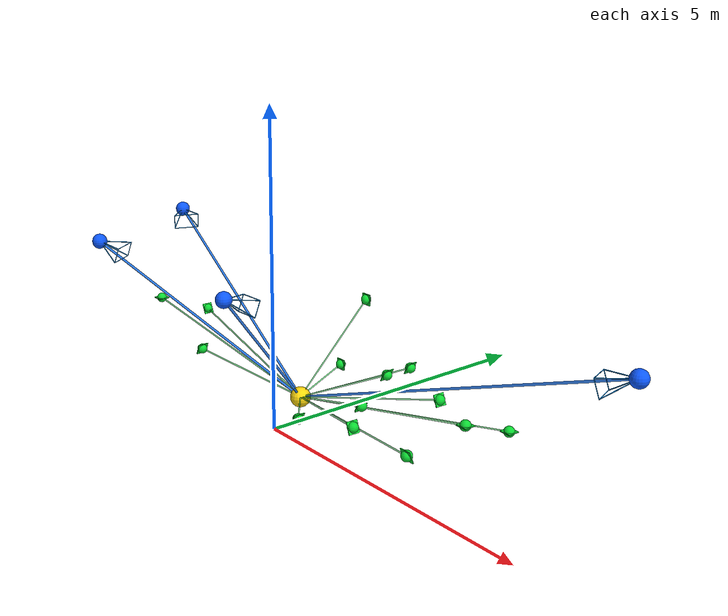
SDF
<?xml version="1.0"?>
<sdf version="1.7">
  <model name="ap02_graph_clean_overlay">
    <static>true</static>
    <link name="ap02_graph_overlay_link">

      <visual name="NODE_REF_ARUCO_14_ORIGIN">
        <pose>0.000000 0.500000 0.400000 0 0 0</pose>
        <geometry><sphere><radius>0.1600</radius></sphere></geometry>

          <material>
            <ambient>1.000 0.850 0.050 1.000</ambient>
            <diffuse>1.000 0.850 0.050 1.000</diffuse>
          </material>
      </visual>
      <visual name="REF_ARUCO_14_PLANE">
        <pose>0.000000 0.500000 0.400000 -0.000000 -0.000000 0.000000</pose>
        <geometry><box><size>0.2000 0.2000 0.0180</size></box></geometry>

          <material>
            <ambient>1.000 0.850 0.050 1.000</ambient>
            <diffuse>1.000 0.850 0.050 1.000</diffuse>
          </material>
      </visual>
      <visual name="NODE_EST_CAMERA_cam_edge_0_dist_2.84m">
        <pose>0.636423 -1.271006 2.528467 0 0 0</pose>
        <geometry><sphere><radius>0.1200</radius></sphere></geometry>

          <material>
            <ambient>0.050 0.350 1.000 1.000</ambient>
            <diffuse>0.050 0.350 1.000 1.000</diffuse>
          </material>
      </visual>
      <visual name="CAMERA_cam_edge_0_frustum_ray_0">
        <pose>0.534993 -1.039664 2.496244 1.697678 -0.000000 -2.728393</pose>
        <geometry>
          <cylinder>
            <radius>0.00600</radius>
            <length>0.509296</length>
          </cylinder>
        </geometry>

          <material>
            <ambient>0.050 0.600 1.000 0.900</ambient>
            <diffuse>0.050 0.600 1.000 0.900</diffuse>
          </material>
      </visual>
      <visual name="CAMERA_cam_edge_0_frustum_ray_1">
        <pose>0.737383 -1.038636 2.502841 1.671603 -0.000000 2.731720</pose>
        <geometry>
          <cylinder>
            <radius>0.00600</radius>
            <length>0.509296</length>
          </cylinder>
        </geometry>

          <material>
            <ambient>0.050 0.600 1.000 0.900</ambient>
            <diffuse>0.050 0.600 1.000 0.900</diffuse>
          </material>
      </visual>
      <visual name="CAMERA_cam_edge_0_frustum_ray_2">
        <pose>0.741416 -1.087356 2.386711 2.161175 -0.000000 2.622241</pose>
        <geometry>
          <cylinder>
            <radius>0.00600</radius>
            <length>0.509296</length>
          </cylinder>
        </geometry>

          <material>
            <ambient>0.050 0.600 1.000 0.900</ambient>
            <diffuse>0.050 0.600 1.000 0.900</diffuse>
          </material>
      </visual>
      <visual name="CAMERA_cam_edge_0_frustum_ray_3">
        <pose>0.539026 -1.088384 2.380114 2.192697 -0.000000 -2.651640</pose>
        <geometry>
          <cylinder>
            <radius>0.00600</radius>
            <length>0.509296</length>
          </cylinder>
        </geometry>

          <material>
            <ambient>0.050 0.600 1.000 0.900</ambient>
            <diffuse>0.050 0.600 1.000 0.900</diffuse>
          </material>
      </visual>
      <visual name="CAMERA_cam_edge_0_frustum_rect_0">
        <pose>0.635954 -0.807294 2.470617 1.538214 -0.000000 1.575875</pose>
        <geometry>
          <cylinder>
            <radius>0.00500</radius>
            <length>0.405000</length>
          </cylinder>
        </geometry>

          <material>
            <ambient>0.050 0.600 1.000 0.900</ambient>
            <diffuse>0.050 0.600 1.000 0.900</diffuse>
          </material>
      </visual>
      <visual name="CAMERA_cam_edge_0_frustum_rect_1">
        <pose>0.842376 -0.854986 2.361084 2.743141 0.000000 0.082583</pose>
        <geometry>
          <cylinder>
            <radius>0.00500</radius>
            <length>0.252000</length>
          </cylinder>
        </geometry>

          <material>
            <ambient>0.050 0.600 1.000 0.900</ambient>
            <diffuse>0.050 0.600 1.000 0.900</diffuse>
          </material>
      </visual>
      <visual name="CAMERA_cam_edge_0_frustum_rect_2">
        <pose>0.644019 -0.904734 2.238358 1.603379 -0.000000 -1.565717</pose>
        <geometry>
          <cylinder>
            <radius>0.00500</radius>
            <length>0.405000</length>
          </cylinder>
        </geometry>

          <material>
            <ambient>0.050 0.600 1.000 0.900</ambient>
            <diffuse>0.050 0.600 1.000 0.900</diffuse>
          </material>
      </visual>
      <visual name="CAMERA_cam_edge_0_frustum_rect_3">
        <pose>0.437596 -0.857042 2.347891 0.398452 -0.000000 -3.059010</pose>
        <geometry>
          <cylinder>
            <radius>0.00500</radius>
            <length>0.252000</length>
          </cylinder>
        </geometry>

          <material>
            <ambient>0.050 0.600 1.000 0.900</ambient>
            <diffuse>0.050 0.600 1.000 0.900</diffuse>
          </material>
      </visual>
      <visual name="EDGE_REF14_TO_CAMERA_cam_edge_0_2.84m">
        <pose>0.318212 -0.385503 1.464234 0.723989 0.000000 0.344986</pose>
        <geometry>
          <cylinder>
            <radius>0.01800</radius>
            <length>2.841104</length>
          </cylinder>
        </geometry>

          <material>
            <ambient>0.050 0.450 1.000 0.850</ambient>
            <diffuse>0.050 0.450 1.000 0.850</diffuse>
          </material>
      </visual>
      <visual name="NODE_EST_CAMERA_cam_edge_1_dist_4.62m">
        <pose>-4.082467 0.971435 2.513292 0 0 0</pose>
        <geometry><sphere><radius>0.1200</radius></sphere></geometry>

          <material>
            <ambient>0.050 0.350 1.000 1.000</ambient>
            <diffuse>0.050 0.350 1.000 1.000</diffuse>
          </material>
      </visual>
      <visual name="CAMERA_cam_edge_1_frustum_ray_0">
        <pose>-3.827847 0.967963 2.514789 1.564919 0.000000 1.557163</pose>
        <geometry>
          <cylinder>
            <radius>0.00600</radius>
            <length>0.509296</length>
          </cylinder>
        </geometry>

          <material>
            <ambient>0.050 0.600 1.000 0.900</ambient>
            <diffuse>0.050 0.600 1.000 0.900</diffuse>
          </material>
      </visual>
      <visual name="CAMERA_cam_edge_1_frustum_ray_1">
        <pose>-3.910875 0.783284 2.512300 1.574691 0.000000 0.739402</pose>
        <geometry>
          <cylinder>
            <radius>0.00600</radius>
            <length>0.509296</length>
          </cylinder>
        </geometry>

          <material>
            <ambient>0.050 0.600 1.000 0.900</ambient>
            <diffuse>0.050 0.600 1.000 0.900</diffuse>
          </material>
      </visual>
      <visual name="CAMERA_cam_edge_1_frustum_ray_2">
        <pose>-3.941130 0.798521 2.390939 2.071996 0.000000 0.685253</pose>
        <geometry>
          <cylinder>
            <radius>0.00600</radius>
            <length>0.509296</length>
          </cylinder>
        </geometry>

          <material>
            <ambient>0.050 0.600 1.000 0.900</ambient>
            <diffuse>0.050 0.600 1.000 0.900</diffuse>
          </material>
      </visual>
      <visual name="CAMERA_cam_edge_1_frustum_ray_3">
        <pose>-3.858102 0.983200 2.393428 2.060887 -0.000000 1.623188</pose>
        <geometry>
          <cylinder>
            <radius>0.00600</radius>
            <length>0.509296</length>
          </cylinder>
        </geometry>

          <material>
            <ambient>0.050 0.600 1.000 0.900</ambient>
            <diffuse>0.050 0.600 1.000 0.900</diffuse>
          </material>
      </visual>
      <visual name="CAMERA_cam_edge_1_frustum_rect_0">
        <pose>-3.656255 0.779812 2.513797 1.583085 -0.000000 -0.422503</pose>
        <geometry>
          <cylinder>
            <radius>0.00500</radius>
            <length>0.405000</length>
          </cylinder>
        </geometry>

          <material>
            <ambient>0.050 0.600 1.000 0.900</ambient>
            <diffuse>0.050 0.600 1.000 0.900</diffuse>
          </material>
      </visual>
      <visual name="CAMERA_cam_edge_1_frustum_rect_1">
        <pose>-3.769538 0.610370 2.389948 -2.899106 -0.124899 1.570796</pose>
        <geometry>
          <cylinder>
            <radius>0.00500</radius>
            <length>0.252000</length>
          </cylinder>
        </geometry>

          <material>
            <ambient>0.050 0.600 1.000 0.900</ambient>
            <diffuse>0.050 0.600 1.000 0.900</diffuse>
          </material>
      </visual>
      <visual name="CAMERA_cam_edge_1_frustum_rect_2">
        <pose>-3.716765 0.810287 2.271075 1.558507 -0.000000 2.719090</pose>
        <geometry>
          <cylinder>
            <radius>0.00500</radius>
            <length>0.405000</length>
          </cylinder>
        </geometry>

          <material>
            <ambient>0.050 0.600 1.000 0.900</ambient>
            <diffuse>0.050 0.600 1.000 0.900</diffuse>
          </material>
      </visual>
      <visual name="CAMERA_cam_edge_1_frustum_rect_3">
        <pose>-3.603482 0.979729 2.394925 -0.242486 0.124899 -1.570796</pose>
        <geometry>
          <cylinder>
            <radius>0.00500</radius>
            <length>0.252000</length>
          </cylinder>
        </geometry>

          <material>
            <ambient>0.050 0.600 1.000 0.900</ambient>
            <diffuse>0.050 0.600 1.000 0.900</diffuse>
          </material>
      </visual>
      <visual name="EDGE_REF14_TO_CAMERA_cam_edge_1_4.62m">
        <pose>-2.041234 0.735717 1.456646 1.095827 -0.000000 -1.685765</pose>
        <geometry>
          <cylinder>
            <radius>0.01800</radius>
            <length>4.621125</length>
          </cylinder>
        </geometry>

          <material>
            <ambient>0.050 0.450 1.000 0.850</ambient>
            <diffuse>0.050 0.450 1.000 0.850</diffuse>
          </material>
      </visual>
      <visual name="NODE_EST_CAMERA_cam_edge_3_dist_4.20m">
        <pose>-3.302164 -1.085678 2.448533 0 0 0</pose>
        <geometry><sphere><radius>0.1200</radius></sphere></geometry>

          <material>
            <ambient>0.050 0.350 1.000 1.000</ambient>
            <diffuse>0.050 0.350 1.000 1.000</diffuse>
          </material>
      </visual>
      <visual name="CAMERA_cam_edge_3_frustum_ray_0">
        <pose>-3.151890 -0.880405 2.437292 1.614952 -0.000000 2.509666</pose>
        <geometry>
          <cylinder>
            <radius>0.00600</radius>
            <length>0.509296</length>
          </cylinder>
        </geometry>

          <material>
            <ambient>0.050 0.600 1.000 0.900</ambient>
            <diffuse>0.050 0.600 1.000 0.900</diffuse>
          </material>
      </visual>
      <visual name="CAMERA_cam_edge_3_frustum_ray_1">
        <pose>-3.049820 -1.055246 2.432984 1.631896 -0.000000 1.690813</pose>
        <geometry>
          <cylinder>
            <radius>0.00600</radius>
            <length>0.509296</length>
          </cylinder>
        </geometry>

          <material>
            <ambient>0.050 0.600 1.000 0.900</ambient>
            <diffuse>0.050 0.600 1.000 0.900</diffuse>
          </material>
      </visual>
      <visual name="CAMERA_cam_edge_3_frustum_ray_2">
        <pose>-3.086398 -1.073664 2.313825 2.128215 -0.000000 1.626421</pose>
        <geometry>
          <cylinder>
            <radius>0.00600</radius>
            <length>0.509296</length>
          </cylinder>
        </geometry>

          <material>
            <ambient>0.050 0.600 1.000 0.900</ambient>
            <diffuse>0.050 0.600 1.000 0.900</diffuse>
          </material>
      </visual>
      <visual name="CAMERA_cam_edge_3_frustum_ray_3">
        <pose>-3.188469 -0.898823 2.318134 2.108398 -0.000000 2.594969</pose>
        <geometry>
          <cylinder>
            <radius>0.00600</radius>
            <length>0.509296</length>
          </cylinder>
        </geometry>

          <material>
            <ambient>0.050 0.600 1.000 0.900</ambient>
            <diffuse>0.050 0.600 1.000 0.900</diffuse>
          </material>
      </visual>
      <visual name="CAMERA_cam_edge_3_frustum_rect_0">
        <pose>-2.899546 -0.849974 2.421743 1.592075 0.000000 0.528415</pose>
        <geometry>
          <cylinder>
            <radius>0.00500</radius>
            <length>0.405000</length>
          </cylinder>
        </geometry>

          <material>
            <ambient>0.050 0.600 1.000 0.900</ambient>
            <diffuse>0.050 0.600 1.000 0.900</diffuse>
          </material>
      </visual>
      <visual name="CAMERA_cam_edge_3_frustum_rect_1">
        <pose>-2.834054 -1.043232 2.298276 2.810552 -0.000000 -1.104344</pose>
        <geometry>
          <cylinder>
            <radius>0.00500</radius>
            <length>0.252000</length>
          </cylinder>
        </geometry>

          <material>
            <ambient>0.050 0.600 1.000 0.900</ambient>
            <diffuse>0.050 0.600 1.000 0.900</diffuse>
          </material>
      </visual>
      <visual name="CAMERA_cam_edge_3_frustum_rect_2">
        <pose>-2.972703 -0.886809 2.183426 1.549517 -0.000000 -2.613178</pose>
        <geometry>
          <cylinder>
            <radius>0.00500</radius>
            <length>0.405000</length>
          </cylinder>
        </geometry>

          <material>
            <ambient>0.050 0.600 1.000 0.900</ambient>
            <diffuse>0.050 0.600 1.000 0.900</diffuse>
          </material>
      </visual>
      <visual name="CAMERA_cam_edge_3_frustum_rect_3">
        <pose>-3.038195 -0.693550 2.306893 0.331041 -0.000000 2.037249</pose>
        <geometry>
          <cylinder>
            <radius>0.00500</radius>
            <length>0.252000</length>
          </cylinder>
        </geometry>

          <material>
            <ambient>0.050 0.600 1.000 0.900</ambient>
            <diffuse>0.050 0.600 1.000 0.900</diffuse>
          </material>
      </visual>
      <visual name="EDGE_REF14_TO_CAMERA_cam_edge_3_4.20m">
        <pose>-1.651082 -0.292839 1.424267 1.060896 -0.000000 -1.123119</pose>
        <geometry>
          <cylinder>
            <radius>0.01800</radius>
            <length>4.197041</length>
          </cylinder>
        </geometry>

          <material>
            <ambient>0.050 0.450 1.000 0.850</ambient>
            <diffuse>0.050 0.450 1.000 0.850</diffuse>
          </material>
      </visual>
      <visual name="NODE_EST_CAMERA_cam_edge_5_dist_6.39m">
        <pose>5.999649 0.815786 2.581473 0 0 0</pose>
        <geometry><sphere><radius>0.1200</radius></sphere></geometry>

          <material>
            <ambient>0.050 0.350 1.000 1.000</ambient>
            <diffuse>0.050 0.350 1.000 1.000</diffuse>
          </material>
      </visual>
      <visual name="CAMERA_cam_edge_5_frustum_ray_0">
        <pose>5.824921 0.630680 2.574302 1.598963 -0.000000 -0.756564</pose>
        <geometry>
          <cylinder>
            <radius>0.00600</radius>
            <length>0.509296</length>
          </cylinder>
        </geometry>

          <material>
            <ambient>0.050 0.600 1.000 0.900</ambient>
            <diffuse>0.050 0.600 1.000 0.900</diffuse>
          </material>
      </visual>
      <visual name="CAMERA_cam_edge_5_frustum_ray_1">
        <pose>5.746156 0.816454 2.557257 1.666038 -0.000000 -1.573428</pose>
        <geometry>
          <cylinder>
            <radius>0.00600</radius>
            <length>0.509296</length>
          </cylinder>
        </geometry>

          <material>
            <ambient>0.050 0.600 1.000 0.900</ambient>
            <diffuse>0.050 0.600 1.000 0.900</diffuse>
          </material>
      </visual>
      <visual name="CAMERA_cam_edge_5_frustum_ray_2">
        <pose>5.788795 0.823674 2.438911 2.164991 -0.000000 -1.608184</pose>
        <geometry>
          <cylinder>
            <radius>0.00600</radius>
            <length>0.509296</length>
          </cylinder>
        </geometry>

          <material>
            <ambient>0.050 0.600 1.000 0.900</ambient>
            <diffuse>0.050 0.600 1.000 0.900</diffuse>
          </material>
      </visual>
      <visual name="CAMERA_cam_edge_5_frustum_ray_3">
        <pose>5.867560 0.637900 2.455956 2.086223 -0.000000 -0.638712</pose>
        <geometry>
          <cylinder>
            <radius>0.00600</radius>
            <length>0.509296</length>
          </cylinder>
        </geometry>

          <material>
            <ambient>0.050 0.600 1.000 0.900</ambient>
            <diffuse>0.050 0.600 1.000 0.900</diffuse>
          </material>
      </visual>
      <visual name="CAMERA_cam_edge_5_frustum_rect_0">
        <pose>5.571428 0.631347 2.550085 1.655069 -0.000000 -2.740582</pose>
        <geometry>
          <cylinder>
            <radius>0.00500</radius>
            <length>0.405000</length>
          </cylinder>
        </geometry>

          <material>
            <ambient>0.050 0.600 1.000 0.900</ambient>
            <diffuse>0.050 0.600 1.000 0.900</diffuse>
          </material>
      </visual>
      <visual name="CAMERA_cam_edge_5_frustum_rect_1">
        <pose>5.535302 0.824341 2.414694 2.791246 -0.000000 1.738532</pose>
        <geometry>
          <cylinder>
            <radius>0.00500</radius>
            <length>0.252000</length>
          </cylinder>
        </geometry>

          <material>
            <ambient>0.050 0.600 1.000 0.900</ambient>
            <diffuse>0.050 0.600 1.000 0.900</diffuse>
          </material>
      </visual>
      <visual name="CAMERA_cam_edge_5_frustum_rect_2">
        <pose>5.656707 0.645787 2.313393 1.486524 0.000000 0.401011</pose>
        <geometry>
          <cylinder>
            <radius>0.00500</radius>
            <length>0.405000</length>
          </cylinder>
        </geometry>

          <material>
            <ambient>0.050 0.600 1.000 0.900</ambient>
            <diffuse>0.050 0.600 1.000 0.900</diffuse>
          </material>
      </visual>
      <visual name="CAMERA_cam_edge_5_frustum_rect_3">
        <pose>5.692833 0.452794 2.448784 0.350347 -0.000000 -1.403061</pose>
        <geometry>
          <cylinder>
            <radius>0.00500</radius>
            <length>0.252000</length>
          </cylinder>
        </geometry>

          <material>
            <ambient>0.050 0.600 1.000 0.900</ambient>
            <diffuse>0.050 0.600 1.000 0.900</diffuse>
          </material>
      </visual>
      <visual name="EDGE_REF14_TO_CAMERA_cam_edge_5_6.39m">
        <pose>2.999824 0.657893 1.490737 1.222501 -0.000000 1.623382</pose>
        <geometry>
          <cylinder>
            <radius>0.01800</radius>
            <length>6.391740</length>
          </cylinder>
        </geometry>

          <material>
            <ambient>0.050 0.450 1.000 0.850</ambient>
            <diffuse>0.050 0.450 1.000 0.850</diffuse>
          </material>
      </visual>
      <visual name="NODE_EST_MARKER_000_dist_2.78m">
        <pose>-2.686544 0.550967 1.111090 0 0 0</pose>
        <geometry><sphere><radius>0.0750</radius></sphere></geometry>

          <material>
            <ambient>0.050 0.850 0.200 1.000</ambient>
            <diffuse>0.050 0.850 0.200 1.000</diffuse>
          </material>
      </visual>
      <visual name="PLANE_EST_MARKER_000">
        <pose>-2.686544 0.550967 1.111090 1.157338 0.028839 1.628115</pose>
        <geometry><box><size>0.1700 0.1700 0.0120</size></box></geometry>

          <material>
            <ambient>0.050 0.850 0.200 1.000</ambient>
            <diffuse>0.050 0.850 0.200 1.000</diffuse>
          </material>
      </visual>
      <visual name="EDGE_REF14_TO_MARKER_000_2.78m">
        <pose>-1.343272 0.525483 0.755545 1.312089 -0.000000 -1.589765</pose>
        <geometry>
          <cylinder>
            <radius>0.01000</radius>
            <length>2.779526</length>
          </cylinder>
        </geometry>

          <material>
            <ambient>0.050 0.800 0.200 0.550</ambient>
            <diffuse>0.050 0.800 0.200 0.550</diffuse>
          </material>
      </visual>
      <visual name="NODE_EST_MARKER_001_dist_2.82m">
        <pose>-2.309686 -0.546652 1.634184 0 0 0</pose>
        <geometry><sphere><radius>0.0750</radius></sphere></geometry>

          <material>
            <ambient>0.050 0.850 0.200 1.000</ambient>
            <diffuse>0.050 0.850 0.200 1.000</diffuse>
          </material>
      </visual>
      <visual name="PLANE_EST_MARKER_001">
        <pose>-2.309686 -0.546652 1.634184 0.019809 -0.006635 -1.569025</pose>
        <geometry><box><size>0.1700 0.1700 0.0120</size></box></geometry>

          <material>
            <ambient>0.050 0.850 0.200 1.000</ambient>
            <diffuse>0.050 0.850 0.200 1.000</diffuse>
          </material>
      </visual>
      <visual name="EDGE_REF14_TO_MARKER_001_2.82m">
        <pose>-1.154843 -0.023326 1.017092 1.117838 -0.000000 -1.145320</pose>
        <geometry>
          <cylinder>
            <radius>0.01000</radius>
            <length>2.820167</length>
          </cylinder>
        </geometry>

          <material>
            <ambient>0.050 0.800 0.200 0.550</ambient>
            <diffuse>0.050 0.800 0.200 0.550</diffuse>
          </material>
      </visual>
      <visual name="NODE_EST_MARKER_002_dist_1.70m">
        <pose>-1.137512 -0.543656 1.106877 0 0 0</pose>
        <geometry><sphere><radius>0.0750</radius></sphere></geometry>

          <material>
            <ambient>0.050 0.850 0.200 1.000</ambient>
            <diffuse>0.050 0.850 0.200 1.000</diffuse>
          </material>
      </visual>
      <visual name="PLANE_EST_MARKER_002">
        <pose>-1.137512 -0.543656 1.106877 1.200185 -0.002657 -1.568200</pose>
        <geometry><box><size>0.1700 0.1700 0.0120</size></box></geometry>

          <material>
            <ambient>0.050 0.850 0.200 1.000</ambient>
            <diffuse>0.050 0.850 0.200 1.000</diffuse>
          </material>
      </visual>
      <visual name="EDGE_REF14_TO_MARKER_002_1.70m">
        <pose>-0.568756 -0.021828 0.753439 1.141394 -0.000000 -0.828402</pose>
        <geometry>
          <cylinder>
            <radius>0.01000</radius>
            <length>1.697889</length>
          </cylinder>
        </geometry>

          <material>
            <ambient>0.050 0.800 0.200 0.550</ambient>
            <diffuse>0.050 0.800 0.200 0.550</diffuse>
          </material>
      </visual>
      <visual name="NODE_EST_MARKER_003_dist_0.83m">
        <pose>0.096675 1.222927 0.796906 0 0 0</pose>
        <geometry><sphere><radius>0.0750</radius></sphere></geometry>

          <material>
            <ambient>0.050 0.850 0.200 1.000</ambient>
            <diffuse>0.050 0.850 0.200 1.000</diffuse>
          </material>
      </visual>
      <visual name="PLANE_EST_MARKER_003">
        <pose>0.096675 1.222927 0.796906 1.564337 -0.011484 0.011479</pose>
        <geometry><box><size>0.1700 0.1700 0.0120</size></box></geometry>

          <material>
            <ambient>0.050 0.850 0.200 1.000</ambient>
            <diffuse>0.050 0.850 0.200 1.000</diffuse>
          </material>
      </visual>
      <visual name="EDGE_REF14_TO_MARKER_003_0.83m">
        <pose>0.048338 0.861464 0.598453 1.072431 -0.000000 3.008654</pose>
        <geometry>
          <cylinder>
            <radius>0.01000</radius>
            <length>0.830364</length>
          </cylinder>
        </geometry>

          <material>
            <ambient>0.050 0.800 0.200 0.550</ambient>
            <diffuse>0.050 0.800 0.200 0.550</diffuse>
          </material>
      </visual>
      <visual name="NODE_EST_MARKER_004_dist_1.92m">
        <pose>0.703540 1.218381 2.034280 0 0 0</pose>
        <geometry><sphere><radius>0.0750</radius></sphere></geometry>

          <material>
            <ambient>0.050 0.850 0.200 1.000</ambient>
            <diffuse>0.050 0.850 0.200 1.000</diffuse>
          </material>
      </visual>
      <visual name="PLANE_EST_MARKER_004">
        <pose>0.703540 1.218381 2.034280 1.553199 -0.003064 0.009531</pose>
        <geometry><box><size>0.1700 0.1700 0.0120</size></box></geometry>

          <material>
            <ambient>0.050 0.850 0.200 1.000</ambient>
            <diffuse>0.050 0.850 0.200 1.000</diffuse>
          </material>
      </visual>
      <visual name="EDGE_REF14_TO_MARKER_004_1.92m">
        <pose>0.351770 0.859191 1.217140 0.551564 -0.000000 2.366631</pose>
        <geometry>
          <cylinder>
            <radius>0.01000</radius>
            <length>1.918831</length>
          </cylinder>
        </geometry>

          <material>
            <ambient>0.050 0.800 0.200 0.550</ambient>
            <diffuse>0.050 0.800 0.200 0.550</diffuse>
          </material>
      </visual>
      <visual name="NODE_EST_MARKER_005_dist_2.56m">
        <pose>1.944673 -0.993675 1.140277 0 0 0</pose>
        <geometry><sphere><radius>0.0750</radius></sphere></geometry>

          <material>
            <ambient>0.050 0.850 0.200 1.000</ambient>
            <diffuse>0.050 0.850 0.200 1.000</diffuse>
          </material>
      </visual>
      <visual name="PLANE_EST_MARKER_005">
        <pose>1.944673 -0.993675 1.140277 1.174429 -0.014905 -1.588312</pose>
        <geometry><box><size>0.1700 0.1700 0.0120</size></box></geometry>

          <material>
            <ambient>0.050 0.850 0.200 1.000</ambient>
            <diffuse>0.050 0.850 0.200 1.000</diffuse>
          </material>
      </visual>
      <visual name="EDGE_REF14_TO_MARKER_005_2.56m">
        <pose>0.972336 -0.246837 0.770139 1.277602 0.000000 0.915821</pose>
        <geometry>
          <cylinder>
            <radius>0.01000</radius>
            <length>2.561411</length>
          </cylinder>
        </geometry>

          <material>
            <ambient>0.050 0.800 0.200 0.550</ambient>
            <diffuse>0.050 0.800 0.200 0.550</diffuse>
          </material>
      </visual>
      <visual name="NODE_EST_MARKER_006_dist_2.24m">
        <pose>2.003183 0.518717 1.408204 0 0 0</pose>
        <geometry><sphere><radius>0.0750</radius></sphere></geometry>

          <material>
            <ambient>0.050 0.850 0.200 1.000</ambient>
            <diffuse>0.050 0.850 0.200 1.000</diffuse>
          </material>
      </visual>
      <visual name="PLANE_EST_MARKER_006">
        <pose>2.003183 0.518717 1.408204 1.143275 -0.009070 -1.561859</pose>
        <geometry><box><size>0.1700 0.1700 0.0120</size></box></geometry>

          <material>
            <ambient>0.050 0.850 0.200 1.000</ambient>
            <diffuse>0.050 0.850 0.200 1.000</diffuse>
          </material>
      </visual>
      <visual name="EDGE_REF14_TO_MARKER_006_2.24m">
        <pose>1.001592 0.509359 0.904102 1.104529 -0.000000 1.580140</pose>
        <geometry>
          <cylinder>
            <radius>0.01000</radius>
            <length>2.242670</length>
          </cylinder>
        </geometry>

          <material>
            <ambient>0.050 0.800 0.200 0.550</ambient>
            <diffuse>0.050 0.800 0.200 0.550</diffuse>
          </material>
      </visual>
      <visual name="NODE_EST_MARKER_007_dist_2.29m">
        <pose>2.000276 0.960868 1.405285 0 0 0</pose>
        <geometry><sphere><radius>0.0750</radius></sphere></geometry>

          <material>
            <ambient>0.050 0.850 0.200 1.000</ambient>
            <diffuse>0.050 0.850 0.200 1.000</diffuse>
          </material>
      </visual>
      <visual name="PLANE_EST_MARKER_007">
        <pose>2.000276 0.960868 1.405285 1.167762 0.000509 -1.551107</pose>
        <geometry><box><size>0.1700 0.1700 0.0120</size></box></geometry>

          <material>
            <ambient>0.050 0.850 0.200 1.000</ambient>
            <diffuse>0.050 0.850 0.200 1.000</diffuse>
          </material>
      </visual>
      <visual name="EDGE_REF14_TO_MARKER_007_2.29m">
        <pose>1.000138 0.730434 0.902642 1.115389 -0.000000 1.797247</pose>
        <geometry>
          <cylinder>
            <radius>0.01000</radius>
            <length>2.285629</length>
          </cylinder>
        </geometry>

          <material>
            <ambient>0.050 0.800 0.200 0.550</ambient>
            <diffuse>0.050 0.800 0.200 0.550</diffuse>
          </material>
      </visual>
      <visual name="NODE_EST_MARKER_008_dist_3.08m">
        <pose>2.701254 -0.523603 1.465757 0 0 0</pose>
        <geometry><sphere><radius>0.0750</radius></sphere></geometry>

          <material>
            <ambient>0.050 0.850 0.200 1.000</ambient>
            <diffuse>0.050 0.850 0.200 1.000</diffuse>
          </material>
      </visual>
      <visual name="PLANE_EST_MARKER_008">
        <pose>2.701254 -0.523603 1.465757 1.162816 -0.016392 -1.599769</pose>
        <geometry><box><size>0.1700 0.1700 0.0120</size></box></geometry>

          <material>
            <ambient>0.050 0.850 0.200 1.000</ambient>
            <diffuse>0.050 0.850 0.200 1.000</diffuse>
          </material>
      </visual>
      <visual name="EDGE_REF14_TO_MARKER_008_3.08m">
        <pose>1.350627 -0.011801 0.932879 1.217348 0.000000 1.208579</pose>
        <geometry>
          <cylinder>
            <radius>0.01000</radius>
            <length>3.079021</length>
          </cylinder>
        </geometry>

          <material>
            <ambient>0.050 0.800 0.200 0.550</ambient>
            <diffuse>0.050 0.800 0.200 0.550</diffuse>
          </material>
      </visual>
      <visual name="NODE_EST_MARKER_009_dist_3.29m">
        <pose>3.124412 0.472690 1.425307 0 0 0</pose>
        <geometry><sphere><radius>0.0750</radius></sphere></geometry>

          <material>
            <ambient>0.050 0.850 0.200 1.000</ambient>
            <diffuse>0.050 0.850 0.200 1.000</diffuse>
          </material>
      </visual>
      <visual name="PLANE_EST_MARKER_009">
        <pose>3.124412 0.472690 1.425307 1.154003 0.011206 1.550695</pose>
        <geometry><box><size>0.1700 0.1700 0.0120</size></box></geometry>

          <material>
            <ambient>0.050 0.850 0.200 1.000</ambient>
            <diffuse>0.050 0.850 0.200 1.000</diffuse>
          </material>
      </visual>
      <visual name="EDGE_REF14_TO_MARKER_009_3.29m">
        <pose>1.562206 0.486345 0.912653 1.253720 0.000000 1.562056</pose>
        <geometry>
          <cylinder>
            <radius>0.01000</radius>
            <length>3.288457</length>
          </cylinder>
        </geometry>

          <material>
            <ambient>0.050 0.800 0.200 0.550</ambient>
            <diffuse>0.050 0.800 0.200 0.550</diffuse>
          </material>
      </visual>
      <visual name="NODE_EST_MARKER_010_dist_3.61m">
        <pose>3.112711 -1.003735 1.446398 0 0 0</pose>
        <geometry><sphere><radius>0.0750</radius></sphere></geometry>

          <material>
            <ambient>0.050 0.850 0.200 1.000</ambient>
            <diffuse>0.050 0.850 0.200 1.000</diffuse>
          </material>
      </visual>
      <visual name="PLANE_EST_MARKER_010">
        <pose>3.112711 -1.003735 1.446398 1.163213 0.027898 1.564120</pose>
        <geometry><box><size>0.1700 0.1700 0.0120</size></box></geometry>

          <material>
            <ambient>0.050 0.850 0.200 1.000</ambient>
            <diffuse>0.050 0.850 0.200 1.000</diffuse>
          </material>
      </visual>
      <visual name="EDGE_REF14_TO_MARKER_010_3.61m">
        <pose>1.556355 -0.251867 0.923199 1.276866 0.000000 1.120764</pose>
        <geometry>
          <cylinder>
            <radius>0.01000</radius>
            <length>3.611805</length>
          </cylinder>
        </geometry>

          <material>
            <ambient>0.050 0.800 0.200 0.550</ambient>
            <diffuse>0.050 0.800 0.200 0.550</diffuse>
          </material>
      </visual>
      <visual name="NODE_EST_MARKER_011_dist_4.30m">
        <pose>4.112536 -0.025524 1.556652 0 0 0</pose>
        <geometry><sphere><radius>0.0750</radius></sphere></geometry>

          <material>
            <ambient>0.050 0.850 0.200 1.000</ambient>
            <diffuse>0.050 0.850 0.200 1.000</diffuse>
          </material>
      </visual>
      <visual name="PLANE_EST_MARKER_011">
        <pose>4.112536 -0.025524 1.556652 0.002105 0.013400 1.556198</pose>
        <geometry><box><size>0.1700 0.1700 0.0120</size></box></geometry>

          <material>
            <ambient>0.050 0.850 0.200 1.000</ambient>
            <diffuse>0.050 0.850 0.200 1.000</diffuse>
          </material>
      </visual>
      <visual name="EDGE_REF14_TO_MARKER_011_4.30m">
        <pose>2.056268 0.237238 0.978326 1.298732 0.000000 1.443699</pose>
        <geometry>
          <cylinder>
            <radius>0.01000</radius>
            <length>4.304297</length>
          </cylinder>
        </geometry>

          <material>
            <ambient>0.050 0.800 0.200 0.550</ambient>
            <diffuse>0.050 0.800 0.200 0.550</diffuse>
          </material>
      </visual>
      <visual name="NODE_EST_MARKER_012_dist_4.53m">
        <pose>4.138366 -1.017390 1.454017 0 0 0</pose>
        <geometry><sphere><radius>0.0750</radius></sphere></geometry>

          <material>
            <ambient>0.050 0.850 0.200 1.000</ambient>
            <diffuse>0.050 0.850 0.200 1.000</diffuse>
          </material>
      </visual>
      <visual name="PLANE_EST_MARKER_012">
        <pose>4.138366 -1.017390 1.454017 1.190349 0.007951 3.125674</pose>
        <geometry><box><size>0.1700 0.1700 0.0120</size></box></geometry>

          <material>
            <ambient>0.050 0.850 0.200 1.000</ambient>
            <diffuse>0.050 0.850 0.200 1.000</diffuse>
          </material>
      </visual>
      <visual name="EDGE_REF14_TO_MARKER_012_4.53m">
        <pose>2.069183 -0.258695 0.927009 1.336078 0.000000 1.219354</pose>
        <geometry>
          <cylinder>
            <radius>0.01000</radius>
            <length>4.532052</length>
          </cylinder>
        </geometry>

          <material>
            <ambient>0.050 0.800 0.200 0.550</ambient>
            <diffuse>0.050 0.800 0.200 0.550</diffuse>
          </material>
      </visual>
      <visual name="NODE_EST_MARKER_013_dist_4.27m">
        <pose>4.171475 0.709063 1.282388 0 0 0</pose>
        <geometry><sphere><radius>0.0750</radius></sphere></geometry>

          <material>
            <ambient>0.050 0.850 0.200 1.000</ambient>
            <diffuse>0.050 0.850 0.200 1.000</diffuse>
          </material>
      </visual>
      <visual name="PLANE_EST_MARKER_013">
        <pose>4.171475 0.709063 1.282388 0.006116 0.004876 1.557526</pose>
        <geometry><box><size>0.1700 0.1700 0.0120</size></box></geometry>

          <material>
            <ambient>0.050 0.850 0.200 1.000</ambient>
            <diffuse>0.050 0.850 0.200 1.000</diffuse>
          </material>
      </visual>
      <visual name="EDGE_REF14_TO_MARKER_013_4.27m">
        <pose>2.085737 0.604532 0.841194 1.362594 -0.000000 1.620872</pose>
        <geometry>
          <cylinder>
            <radius>0.01000</radius>
            <length>4.268901</length>
          </cylinder>
        </geometry>

          <material>
            <ambient>0.050 0.800 0.200 0.550</ambient>
            <diffuse>0.050 0.800 0.200 0.550</diffuse>
          </material>
      </visual>
      <visual name="NODE_EST_REF_MARKER_14">
        <pose>0.000000 0.500000 0.400000 0 0 0</pose>
        <geometry><sphere><radius>0.1200</radius></sphere></geometry>

          <material>
            <ambient>0.050 0.850 0.200 1.000</ambient>
            <diffuse>0.050 0.850 0.200 1.000</diffuse>
          </material>
      </visual>
      <visual name="PLANE_EST_MARKER_014">
        <pose>0.000000 0.500000 0.400000 -0.000000 -0.000000 0.000000</pose>
        <geometry><box><size>0.1700 0.1700 0.0120</size></box></geometry>

          <material>
            <ambient>0.050 0.850 0.200 1.000</ambient>
            <diffuse>0.050 0.850 0.200 1.000</diffuse>
          </material>
      </visual>
    </link>
  </model>
</sdf>
